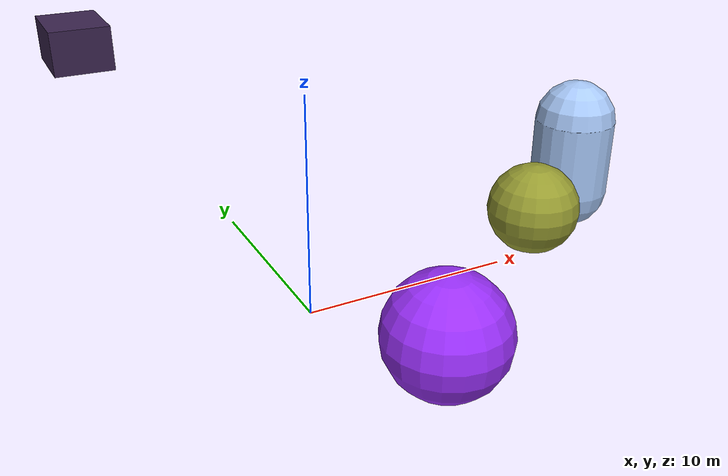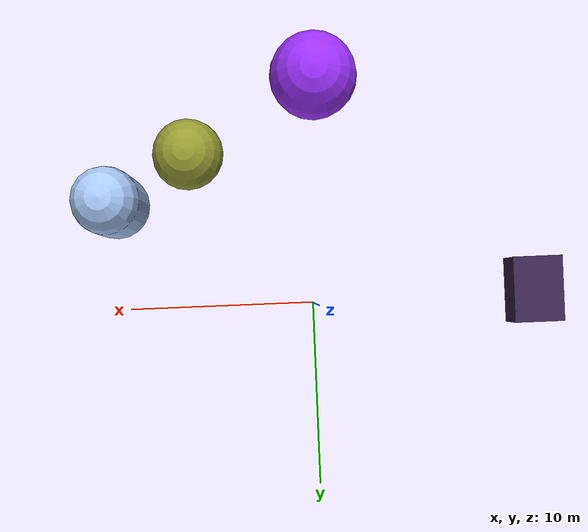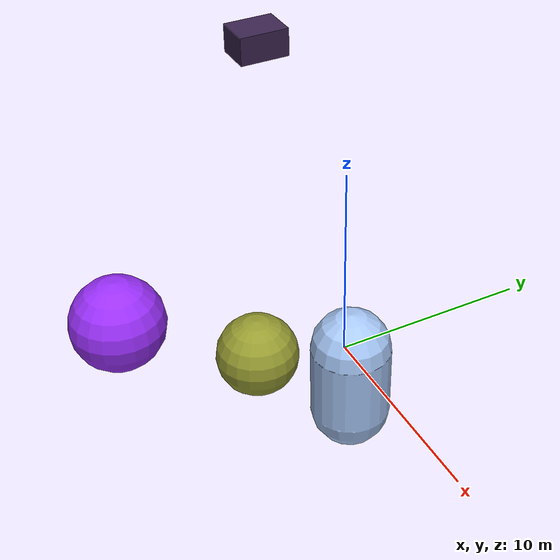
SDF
<sdf version='1.11'>
  <world name='world_0'>
    <gravity>0 0 -9.8066499999999994</gravity>
    <magnetic_field>5.5644999999999998e-06 2.2875799999999999e-05 -4.2388400000000002e-05</magnetic_field>
    <wind>
      <linear_velocity>10 5 7</linear_velocity>
    </wind>
    <physics default='false' type='ode'>
      <max_step_size>0.001</max_step_size>
      <real_time_factor>1</real_time_factor>
      <max_contacts>20</max_contacts>
    </physics>
    <model name='model_0'>
      <static>false</static>
      <self_collide>false</self_collide>
      <allow_auto_disable>true</allow_auto_disable>
      <enable_wind>false</enable_wind>
      <pose>1.5985867109858454 -6.7933792315942192 3.2331003842452644 0 0 0</pose>
      <link name='link_0'>
        <pose>4.1490968567346371 -0.44019034323003225 3.7562307435000131 0 0 0</pose>
        <inertial>
          <pose>0 0 0 0 0 0</pose>
          <mass>1</mass>
          <inertia>
            <ixx>1</ixx>
            <ixy>0</ixy>
            <ixz>0</ixz>
            <iyy>1</iyy>
            <iyz>0</iyz>
            <izz>1</izz>
          </inertia>
        </inertial>
        <enable_wind>false</enable_wind>
        <collision name='collision_0'>
          <pose>0 0 0 0 0 0</pose>
          <geometry>
            <sphere>
              <radius>1.6603842727968725</radius>
            </sphere>
          </geometry>
          <surface>
            <contact>
              <collide_bitmask>255</collide_bitmask>
            </contact>
            <friction>
              <ode>
                <mu>1</mu>
                <mu2>1</mu2>
                <slip1>0</slip1>
                <slip2>0</slip2>
                <fdir1>0 0 0</fdir1>
              </ode>
            </friction>
          </surface>
        </collision>
        <visual name='visual_0'>
          <pose>0 0 0 0 0 0</pose>
          <geometry>
            <sphere>
              <radius>1.6603842727968725</radius>
            </sphere>
          </geometry>
          <cast_shadows>true</cast_shadows>
          <laser_retro>0</laser_retro>
          <transparency>0</transparency>
          <visibility_flags>4294967295</visibility_flags>
          <material>
            <ambient>0.586773515 0.605443358 0.190782413 1</ambient>
            <diffuse>0.586773515 0.605443358 0.190782413 1</diffuse>
            <specular>0 0 0 1</specular>
            <emissive>0 0 0 1</emissive>
            <render_order>0</render_order>
            <lighting>true</lighting>
            <double_sided>false</double_sided>
            <shader type='pixel'/>
          </material>
        </visual>
      </link>
      <link name='link_1'>
        <pose>-1.8944123734523686 -4.2328549814575567 2.4193292109373363 0 0 0</pose>
        <inertial>
          <pose>0 0 0 0 0 0</pose>
          <mass>1</mass>
          <inertia>
            <ixx>1</ixx>
            <ixy>0</ixy>
            <ixz>0</ixz>
            <iyy>1</iyy>
            <iyz>0</iyz>
            <izz>1</izz>
          </inertia>
        </inertial>
        <enable_wind>false</enable_wind>
        <collision name='collision_1'>
          <pose>0 0 0 0 0 0</pose>
          <geometry>
            <sphere>
              <radius>2.1264349422038702</radius>
            </sphere>
          </geometry>
          <surface>
            <contact>
              <collide_bitmask>255</collide_bitmask>
            </contact>
            <friction>
              <ode>
                <mu>1</mu>
                <mu2>1</mu2>
                <slip1>0</slip1>
                <slip2>0</slip2>
                <fdir1>0 0 0</fdir1>
              </ode>
            </friction>
          </surface>
        </collision>
        <visual name='visual_1'>
          <pose>0 0 0 0 0 0</pose>
          <geometry>
            <sphere>
              <radius>2.1264349422038702</radius>
            </sphere>
          </geometry>
          <cast_shadows>true</cast_shadows>
          <laser_retro>0</laser_retro>
          <transparency>0</transparency>
          <visibility_flags>4294967295</visibility_flags>
          <material>
            <ambient>0.603942275 0.18383345 0.98200345 1</ambient>
            <diffuse>0.603942275 0.18383345 0.98200345 1</diffuse>
            <specular>0 0 0 1</specular>
            <emissive>0 0 0 1</emissive>
            <render_order>0</render_order>
            <lighting>true</lighting>
            <double_sided>false</double_sided>
            <shader type='pixel'/>
          </material>
        </visual>
      </link>
      <plugin name='gz::sim::systems::PythonSystemLoader' filename='gz-sim-python-system-loader-system'>
        <module_name>driver</module_name>
        <force>100000</force>
      </plugin>
    </model>
    <model name='model_1'>
      <static>false</static>
      <self_collide>false</self_collide>
      <allow_auto_disable>true</allow_auto_disable>
      <enable_wind>false</enable_wind>
      <pose>-0.072919873757328446 -0.50599736165515452 7.2466404610007533 0 0 0</pose>
      <link name='link_2'>
        <pose>9.3417131812116381 -4.5058548273387995 0.40202690209691139 0 0 0</pose>
        <inertial>
          <pose>0 0 0 0 0 0</pose>
          <mass>1</mass>
          <inertia>
            <ixx>1</ixx>
            <ixy>0</ixy>
            <ixz>0</ixz>
            <iyy>1</iyy>
            <iyz>0</iyz>
            <izz>1</izz>
          </inertia>
        </inertial>
        <enable_wind>false</enable_wind>
        <collision name='collision_2'>
          <pose>0 0 0 0 0 0</pose>
          <geometry>
            <capsule>
              <radius>1.5270059213412628</radius>
              <length>2.8873333915616897</length>
            </capsule>
          </geometry>
          <surface>
            <contact>
              <collide_bitmask>255</collide_bitmask>
            </contact>
            <friction>
              <ode>
                <mu>1</mu>
                <mu2>1</mu2>
                <slip1>0</slip1>
                <slip2>0</slip2>
                <fdir1>0 0 0</fdir1>
              </ode>
            </friction>
          </surface>
        </collision>
        <visual name='visual_2'>
          <pose>0 0 0 0 0 0</pose>
          <geometry>
            <capsule>
              <radius>1.5270059213412628</radius>
              <length>2.8873333915616897</length>
            </capsule>
          </geometry>
          <cast_shadows>true</cast_shadows>
          <laser_retro>0</laser_retro>
          <transparency>0</transparency>
          <visibility_flags>4294967295</visibility_flags>
          <material>
            <ambient>0.651693821 0.778595567 0.965192735 1</ambient>
            <diffuse>0.651693821 0.778595567 0.965192735 1</diffuse>
            <specular>0 0 0 1</specular>
            <emissive>0 0 0 1</emissive>
            <render_order>0</render_order>
            <lighting>true</lighting>
            <double_sided>false</double_sided>
            <shader type='pixel'/>
          </material>
        </visual>
      </link>
      <link name='link_3'>
        <pose>-8.2456041469401846 0.14367580728214691 5.9090636964200707 0 0 0</pose>
        <inertial>
          <pose>0 0 0 0 0 0</pose>
          <mass>1</mass>
          <inertia>
            <ixx>1</ixx>
            <ixy>0</ixy>
            <ixz>0</ixz>
            <iyy>1</iyy>
            <iyz>0</iyz>
            <izz>1</izz>
          </inertia>
        </inertial>
        <enable_wind>false</enable_wind>
        <collision name='collision_3'>
          <pose>0 0 0 0 0 0</pose>
          <geometry>
            <box>
              <size>1.913859826685272 2.5352948515022353 1.4309440150179658</size>
            </box>
          </geometry>
          <surface>
            <contact>
              <collide_bitmask>255</collide_bitmask>
            </contact>
            <friction>
              <ode>
                <mu>1</mu>
                <mu2>1</mu2>
                <slip1>0</slip1>
                <slip2>0</slip2>
                <fdir1>0 0 0</fdir1>
              </ode>
            </friction>
          </surface>
        </collision>
        <visual name='visual_3'>
          <pose>0 0 0 0 0 0</pose>
          <geometry>
            <box>
              <size>1.913859826685272 2.5352948515022353 1.4309440150179658</size>
            </box>
          </geometry>
          <cast_shadows>true</cast_shadows>
          <laser_retro>0</laser_retro>
          <transparency>0</transparency>
          <visibility_flags>4294967295</visibility_flags>
          <material>
            <ambient>0.227094844 0.142566398 0.306194931 1</ambient>
            <diffuse>0.227094844 0.142566398 0.306194931 1</diffuse>
            <specular>0 0 0 1</specular>
            <emissive>0 0 0 1</emissive>
            <render_order>0</render_order>
            <lighting>true</lighting>
            <double_sided>false</double_sided>
            <shader type='pixel'/>
          </material>
        </visual>
      </link>
      <plugin name='gz::sim::systems::PythonSystemLoader' filename='gz-sim-python-system-loader-system'>
        <module_name>driver</module_name>
        <force>100000</force>
      </plugin>
    </model>
    <model name='ground_model'>
      <static>true</static>
      <self_collide>false</self_collide>
      <allow_auto_disable>true</allow_auto_disable>
      <enable_wind>false</enable_wind>
      <pose>0 0 0 0 0 0</pose>
      <link name='ground_link'>
        <pose>0 0 0 0 0 0</pose>
        <inertial>
          <pose>0 0 0 0 0 0</pose>
          <mass>1</mass>
          <inertia>
            <ixx>1</ixx>
            <ixy>0</ixy>
            <ixz>0</ixz>
            <iyy>1</iyy>
            <iyz>0</iyz>
            <izz>1</izz>
          </inertia>
        </inertial>
        <enable_wind>false</enable_wind>
        <collision name='ground_collision'>
          <pose>0 0 0 0 0 0</pose>
          <geometry>
            <plane>
              <normal>0 0 1</normal>
              <size>20.207572328699349 20.298216441852194</size>
            </plane>
          </geometry>
          <surface>
            <contact>
              <collide_bitmask>255</collide_bitmask>
            </contact>
            <friction>
              <ode>
                <mu>1</mu>
                <mu2>1</mu2>
                <slip1>0</slip1>
                <slip2>0</slip2>
                <fdir1>0 0 0</fdir1>
              </ode>
            </friction>
          </surface>
        </collision>
      </link>
    </model>
    <joint name='joint_0' type='revolute'>
      <pose>0 0 0 0 0 0</pose>
      <parent>model_0</parent>
      <child>model_1</child>
    </joint>
    <atmosphere type='adiabatic'>
      <temperature>288.14999999999998</temperature>
      <pressure>101325</pressure>
      <temperature_gradient>-0.0064999999999999997</temperature_gradient>
    </atmosphere>
    <scene>
      <ambient>0.400000006 0.400000006 0.400000006 1</ambient>
      <background>0.699999988 0.699999988 0.699999988 1</background>
      <grid>true</grid>
      <origin_visual>true</origin_visual>
      <shadows>true</shadows>
    </scene>
  </world>
</sdf>
